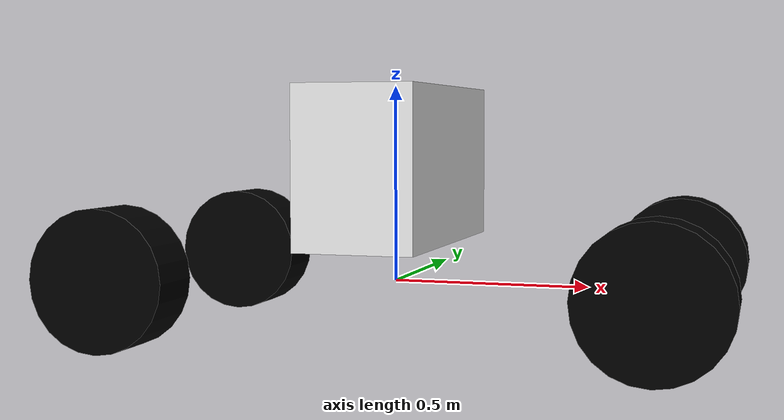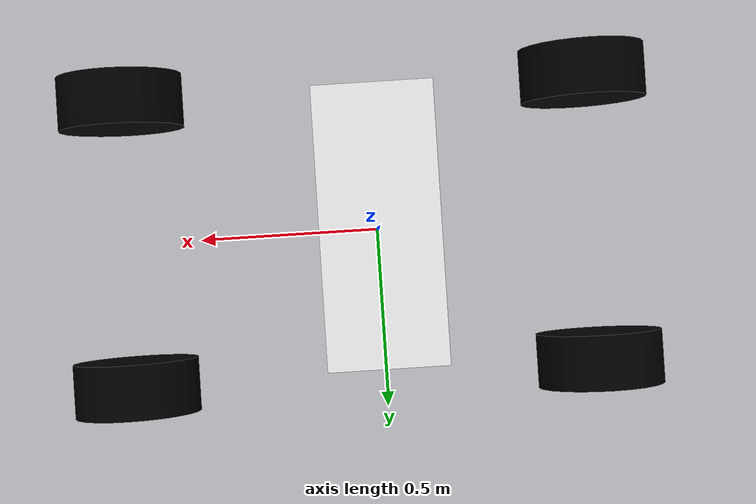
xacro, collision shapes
<?xml version="1.0"?>

<robot xmlns:xacro="http://www.ros.org/wiki/xacro" name="car">

    <material name="black">
        <color rgba="0.0 0.0 0.0 1.0"/>
    </material>

    <material name="white">
        <color rgba="1.0 1.0 1.0 1.0"/>
    </material>

    <link name="base_link"/>

    <joint name="base_link_connection" type="fixed">
        <parent link="base_link" />
        <child link="chassis" />
        <origin xyz="0.0 0 0" rpy="0 0 0.0" />
    </joint>

    <link name="chassis">
        <visual>
            <origin xyz="0.0 0.0 0.0" rpy="0.0 0.0 ${pi/2}"/>
            <geometry>
                <mesh filename="file://$(find four_wheel_car)/meshes/golf_car.dae"/>
            </geometry>
            <material name="white"/>
       </visual>
       <collision>
            <origin xyz="0.0 0.0 0.3" rpy="0.0 0.0 ${pi/2}"/>
            <geometry>
                <box size="0.7 0.3 0.4"/>
            </geometry>
       </collision>
       <xacro:inertial_box mass="5" x="1.0" y="0.4" z="0.0" xyz="0.0 0.0 0.0" rpy="0.0 0.0 ${pi/2}"/>
    </link>

    <link name="fl_axle">
        <xacro:inertial_box mass="0.1" x="0.04" y="0.04" z="0.04" xyz="0.0 0.0 0.0" rpy="0.0 0.0 0.0"/>
    </link>

    <link name="fr_axle">
        <xacro:inertial_box mass="0.1" x="0.04" y="0.04" z="0.04" xyz="0.0 0.0 0.0" rpy="0.0 0.0 0.0"/>
    </link>

    <link name="front_left_wheel">
        <visual>
            <origin xyz="0.0 0.0 0.0" rpy="${pi/2} 0.0 ${pi/2}"/>
            <geometry>
                <mesh filename="file://$(find four_wheel_car)/meshes/wheel.dae"/>
            </geometry>
            <material name="black"/>
        </visual>
        <collision>
            <origin xyz="0.0 0.0 0.0" rpy="${pi/2} 0.0 0.0"/>
            <geometry>
                <cylinder radius="0.175" length="0.15"/>
            </geometry>
        </collision>
        <xacro:inertial_cylinder mass="0.5" radius="0.175" length="0.15" xyz="0 0 0" rpy="${pi/2} 0 0"/>
    </link>

    <link name="front_right_wheel">
        <visual>
            <origin xyz="0.0 0.0 0.0" rpy="${pi/2} 0.0 ${pi*3/2}"/>
            <geometry>
               <mesh filename="file://$(find four_wheel_car)/meshes/wheel.dae"/>
            </geometry>
            <material name="black"/>
        </visual>
        <collision>
            <origin xyz="0.0 0.0 0.0" rpy="${pi/2} 0.0 0.0"/>
            <geometry>
                <cylinder radius="0.175" length="0.15"/>
            </geometry>
        </collision>
        <xacro:inertial_cylinder mass="0.8" radius="0.175" length="0.15" xyz="0 0 0" rpy="${pi/2} 0 0"/>
    </link>

    <link name="rear_left_wheel">
        <visual>
            <origin xyz="0.0 0.0 0.0" rpy="${pi/2} 0.0 ${pi/2}"/>
            <geometry>
                <mesh filename="file://$(find four_wheel_car)/meshes/wheel.dae"/>
            </geometry>
            <material name="black"/>
        </visual>
        <collision>
            <origin xyz="0.0 0.0 0.0" rpy="${pi/2} 0.0 0.0"/>
            <geometry>
                <cylinder radius="0.175" length="0.15"/>
            </geometry>
        </collision>
        <xacro:inertial_cylinder mass="0.8" radius="0.175" length="0.15" xyz="0 0 0" rpy="${pi/2} 0 0"/>
    </link>

    <link name="rear_right_wheel">
        <visual>
            <origin xyz="0.0 0.0 0.0" rpy="${pi/2} 0.0 ${pi*3/2}"/>
            <geometry>
                <mesh filename="file://$(find four_wheel_car)/meshes/wheel.dae"/>
            </geometry>
            <material name="black"/>
        </visual>
        <collision>
            <origin xyz="0.0 0.0 0.0" rpy="${pi/2} 0.0 0.0"/>
            <geometry>
                <cylinder radius="0.175" length="0.15"/>
            </geometry>
        </collision>
        <xacro:inertial_cylinder mass="0.8" radius="0.175" length="0.15" xyz="0 0 0" rpy="${pi/2} 0 0"/>
    </link>

    <joint name="front_left_steer_joint" type="revolute">
        <origin xyz="0.70 0.4 0.03" rpy="0.0 0.0 0.0"/>
        <parent link="chassis"/>
        <child link="fl_axle"/>
        <axis xyz="0.0 0.0 1.0"/>
        <limit lower="-0.785" upper="0.785" effort="10000000.0" velocity="10000000.0"/>
    </joint>

    <joint name="front_right_steer_joint" type="revolute">
        <origin xyz="0.70 -0.4 0.03" rpy="0.0 0.0 0.0"/>
        <parent link="chassis"/>
        <child link="fr_axle"/>
        <axis xyz="0.0 0.0 1.0"/>
        <limit lower="-0.785" upper="0.785" effort="10000000.0" velocity="10000000.0"/>
    </joint>

    <joint name="front_left_wheel_joint" type="continuous">
        <parent link="fl_axle" />
        <child link="front_left_wheel" />
        <origin xyz="0 0 0" rpy="0 0 0" />
        <axis xyz="0 1 0" />
    </joint>

    <joint name="front_right_wheel_joint" type="continuous">
        <parent link="fr_axle" />
        <child link="front_right_wheel" />
        <origin xyz="0 0 0" rpy="0 0 0" />
        <axis xyz="0 1 0" />
    </joint>

    <joint name="rear_left_wheel_joint" type="continuous">
        <origin xyz="-0.60 0.4 0.03" rpy="0.0 0.0 0.0"/>
        <parent link="chassis" />
        <child link="rear_left_wheel" />
        <axis xyz="0 1 0" />
    </joint>

    <joint name="rear_right_wheel_joint" type="continuous">
        <origin xyz="-0.60 -0.4 0.03" rpy="0.0 0.0 0.0"/>
        <parent link="chassis" />
        <child link="rear_right_wheel" />
        <axis xyz="0 1 0" />
    </joint>

    <gazebo reference="chassis">
        <material>Gazebo/Yellow</material>
    </gazebo>

    <gazebo reference="front_left_wheel">
        <material>Gazebo/Black</material>
    </gazebo>

    <gazebo reference="front_right_wheel">
        <material>Gazebo/Black</material>
    </gazebo>

    <gazebo reference="rear_left_wheel">
        <material>Gazebo/Black</material>
    </gazebo>

    <gazebo reference="rear_right_wheel">
        <material>Gazebo/Black</material>
    </gazebo>

</robot>
